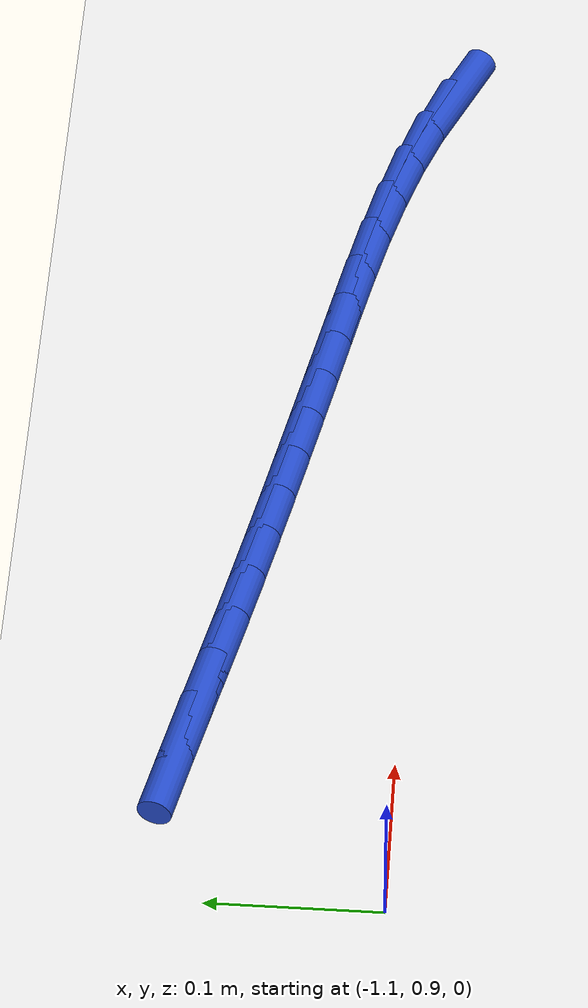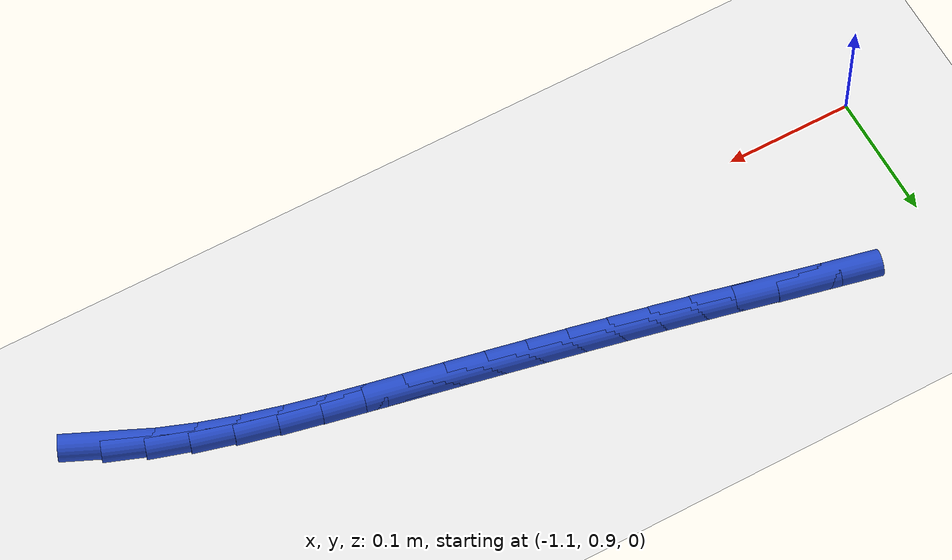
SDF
<sdf version="1.6">
 <world name="default">
  <model name="ground_plane">
   <static>1</static>
   <link name="link">
    <collision name="collision">
     <geometry><plane><normal>0 0 1</normal><size>100 100</size></plane></geometry>
     <surface><friction><ode><mu>100</mu><mu2>50</mu2></ode></friction></surface>
    </collision>
    <visual name="visual">
     <cast_shadows>0</cast_shadows>
     <geometry><plane><normal>0 0 1</normal><size>100 100</size></plane></geometry>
     <material>
      <script><uri>file://media/materials/scripts/gazebo.material</uri><name>Gazebo/WhiteGlow</name></script>
     </material>
    </visual>
   </link>
  </model>
  <model name="line">
   <link name="link_34">
    <pose>-0.494988831148285 0.8920040738524632 0.01 0 1.57 -0.43520205764031294</pose>
    <collision name="collision">
     <geometry><cylinder><radius>0.01</radius><length>0.08</length></cylinder></geometry>
    </collision>
    <visual name="visual">
     <material>
      <script><name>Gazebo/Blue</name><uri>file://media/materials/scripts/gazebo.material</uri></script>
     </material>
     <geometry><cylinder><radius>0.01</radius><length>0.08</length></cylinder></geometry>
    </visual>
   </link>
   <link name="link_35">
    <pose>-0.5225512562623872 0.9048187372392548 0.01 0 1.57 -0.3638521827705602</pose>
    <collision name="collision">
     <geometry><cylinder><radius>0.01</radius><length>0.08</length></cylinder></geometry>
    </collision>
    <visual name="visual">
     <material>
      <script><name>Gazebo/Blue</name><uri>file://media/materials/scripts/gazebo.material</uri></script>
     </material>
     <geometry><cylinder><radius>0.01</radius><length>0.08</length></cylinder></geometry>
    </visual>
   </link>
   <link name="link_36">
    <pose>-0.5514810942387424 0.9158354283047339 0.01 0 1.57 -0.3072075897965701</pose>
    <collision name="collision">
     <geometry><cylinder><radius>0.01</radius><length>0.08</length></cylinder></geometry>
    </collision>
    <visual name="visual">
     <material>
      <script><name>Gazebo/Blue</name><uri>file://media/materials/scripts/gazebo.material</uri></script>
     </material>
     <geometry><cylinder><radius>0.01</radius><length>0.08</length></cylinder></geometry>
    </visual>
   </link>
   <link name="link_37">
    <pose>-0.5814666407259056 0.9253483822115213 0.01 0 1.57 -0.26390816279050633</pose>
    <collision name="collision">
     <geometry><cylinder><radius>0.01</radius><length>0.08</length></cylinder></geometry>
    </collision>
    <visual name="visual">
     <material>
      <script><name>Gazebo/Blue</name><uri>file://media/materials/scripts/gazebo.material</uri></script>
     </material>
     <geometry><cylinder><radius>0.01</radius><length>0.08</length></cylinder></geometry>
    </visual>
   </link>
   <link name="link_38">
    <pose>-0.6121961913724312 0.9336518341222371 0.01 0 1.57 -0.232792323611954</pose>
    <collision name="collision">
     <geometry><cylinder><radius>0.01</radius><length>0.08</length></cylinder></geometry>
    </collision>
    <visual name="visual">
     <material>
      <script><name>Gazebo/Blue</name><uri>file://media/materials/scripts/gazebo.material</uri></script>
     </material>
     <geometry><cylinder><radius>0.01</radius><length>0.08</length></cylinder></geometry>
    </visual>
   </link>
   <link name="link_39">
    <pose>-0.6433580418268743 0.941040019199503 0.01 0 1.57 -0.21304160974595207</pose>
    <collision name="collision">
     <geometry><cylinder><radius>0.01</radius><length>0.08</length></cylinder></geometry>
    </collision>
    <visual name="visual">
     <material>
      <script><name>Gazebo/Blue</name><uri>file://media/materials/scripts/gazebo.material</uri></script>
     </material>
     <geometry><cylinder><radius>0.01</radius><length>0.08</length></cylinder></geometry>
    </visual>
   </link>
   <link name="link_40">
    <pose>-0.6746404877377898 0.9478071726059394 0.01 0 1.57 -0.20425041362675309</pose>
    <collision name="collision">
     <geometry><cylinder><radius>0.01</radius><length>0.08</length></cylinder></geometry>
    </collision>
    <visual name="visual">
     <material>
      <script><name>Gazebo/Blue</name><uri>file://media/materials/scripts/gazebo.material</uri></script>
     </material>
     <geometry><cylinder><radius>0.01</radius><length>0.08</length></cylinder></geometry>
    </visual>
   </link>
   <link name="link_41">
    <pose>-0.7057319850688487 0.954247432624783 0.01 0 1.57 -0.203951934197933</pose>
    <collision name="collision">
     <geometry><cylinder><radius>0.01</radius><length>0.08</length></cylinder></geometry>
    </collision>
    <visual name="visual">
     <material>
      <script><name>Gazebo/Blue</name><uri>file://media/materials/scripts/gazebo.material</uri></script>
     </material>
     <geometry><cylinder><radius>0.01</radius><length>0.08</length></cylinder></geometry>
    </visual>
   </link>
   <link name="link_42">
    <pose>-0.7364206675993615 0.9605947016384856 0.01 0 1.57 -0.20551247004671597</pose>
    <collision name="collision">
     <geometry><cylinder><radius>0.01</radius><length>0.08</length></cylinder></geometry>
    </collision>
    <visual name="visual">
     <material>
      <script><name>Gazebo/Blue</name><uri>file://media/materials/scripts/gazebo.material</uri></script>
     </material>
     <geometry><cylinder><radius>0.01</radius><length>0.08</length></cylinder></geometry>
    </visual>
   </link>
   <link name="link_43">
    <pose>-0.7667642308547358 0.9669199842524087 0.01 0 1.57 -0.20781201566636634</pose>
    <collision name="collision">
     <geometry><cylinder><radius>0.01</radius><length>0.08</length></cylinder></geometry>
    </collision>
    <visual name="visual">
     <material>
      <script><name>Gazebo/Blue</name><uri>file://media/materials/scripts/gazebo.material</uri></script>
     </material>
     <geometry><cylinder><radius>0.01</radius><length>0.08</length></cylinder></geometry>
    </visual>
   </link>
   <link name="link_44">
    <pose>-0.7968654899333169 0.973267019043846 0.01 0 1.57 -0.2108427023587976</pose>
    <collision name="collision">
     <geometry><cylinder><radius>0.01</radius><length>0.08</length></cylinder></geometry>
    </collision>
    <visual name="visual">
     <material>
      <script><name>Gazebo/Blue</name><uri>file://media/materials/scripts/gazebo.material</uri></script>
     </material>
     <geometry><cylinder><radius>0.01</radius><length>0.08</length></cylinder></geometry>
    </visual>
   </link>
   <link name="link_45">
    <pose>-0.8268272599334493 0.9796795445900913 0.01 0 1.57 -0.2145807131898262</pose>
    <collision name="collision">
     <geometry><cylinder><radius>0.01</radius><length>0.08</length></cylinder></geometry>
    </collision>
    <visual name="visual">
     <material>
      <script><name>Gazebo/Blue</name><uri>file://media/materials/scripts/gazebo.material</uri></script>
     </material>
     <geometry><cylinder><radius>0.01</radius><length>0.08</length></cylinder></geometry>
    </visual>
   </link>
   <link name="link_46">
    <pose>-0.8567523559534792 0.986201299468439 0.01 0 1.57 -0.21898677206744444</pose>
    <collision name="collision">
     <geometry><cylinder><radius>0.01</radius><length>0.08</length></cylinder></geometry>
    </collision>
    <visual name="visual">
     <material>
      <script><name>Gazebo/Blue</name><uri>file://media/materials/scripts/gazebo.material</uri></script>
     </material>
     <geometry><cylinder><radius>0.01</radius><length>0.08</length></cylinder></geometry>
    </visual>
   </link>
   <link name="link_47">
    <pose>-0.8867435930917515 0.9928760222561825 0.01 0 1.57 -0.22400746100928717</pose>
    <collision name="collision">
     <geometry><cylinder><radius>0.01</radius><length>0.08</length></cylinder></geometry>
    </collision>
    <visual name="visual">
     <material>
      <script><name>Gazebo/Blue</name><uri>file://media/materials/scripts/gazebo.material</uri></script>
     </material>
     <geometry><cylinder><radius>0.01</radius><length>0.08</length></cylinder></geometry>
    </visual>
   </link>
   <link name="link_48">
    <pose>-0.9169037864466116 0.9997474515306161 0.01 0 1.57 -0.22957727754355314</pose>
    <collision name="collision">
     <geometry><cylinder><radius>0.01</radius><length>0.08</length></cylinder></geometry>
    </collision>
    <visual name="visual">
     <material>
      <script><name>Gazebo/Blue</name><uri>file://media/materials/scripts/gazebo.material</uri></script>
     </material>
     <geometry><cylinder><radius>0.01</radius><length>0.08</length></cylinder></geometry>
    </visual>
   </link>
   <link name="link_49">
    <pose>-0.9473357511164046 1.0068593258690335 0.01 0 1.57 -0.23473273797342897</pose>
    <collision name="collision">
     <geometry><cylinder><radius>0.01</radius><length>0.08</length></cylinder></geometry>
    </collision>
    <visual name="visual">
     <material>
      <script><name>Gazebo/Blue</name><uri>file://media/materials/scripts/gazebo.material</uri></script>
     </material>
     <geometry><cylinder><radius>0.01</radius><length>0.08</length></cylinder></geometry>
    </visual>
   </link>
   <link name="link_50">
    <pose>-0.9781215209429756 1.0142214699397796 0.01 0 1.57 -0.23399018855294518</pose>
    <collision name="collision">
     <geometry><cylinder><radius>0.01</radius><length>0.08</length></cylinder></geometry>
    </collision>
    <visual name="visual">
     <material>
      <script><name>Gazebo/Blue</name><uri>file://media/materials/scripts/gazebo.material</uri></script>
     </material>
     <geometry><cylinder><radius>0.01</radius><length>0.08</length></cylinder></geometry>
    </visual>
   </link>
   <link name="link_51">
    <pose>-1.0092136997729113 1.0216324855202985 0.01 0 1.57 -0.22539997940004383</pose>
    <collision name="collision">
     <geometry><cylinder><radius>0.01</radius><length>0.08</length></cylinder></geometry>
    </collision>
    <visual name="visual">
     <material>
      <script><name>Gazebo/Blue</name><uri>file://media/materials/scripts/gazebo.material</uri></script>
     </material>
     <geometry><cylinder><radius>0.01</radius><length>0.08</length></cylinder></geometry>
    </visual>
   </link>
  </model>
 </world>
</sdf>
